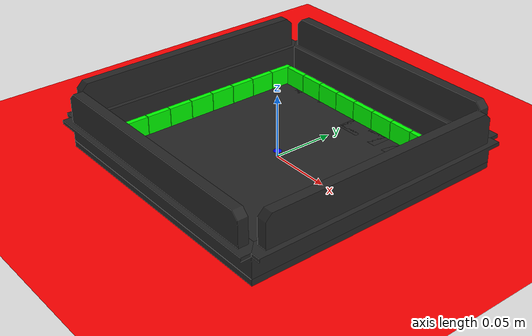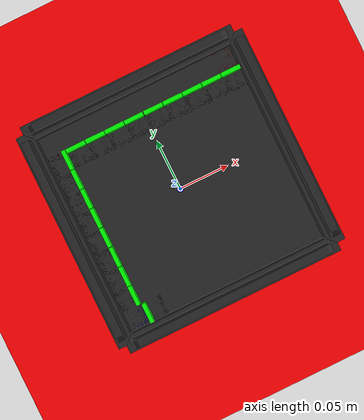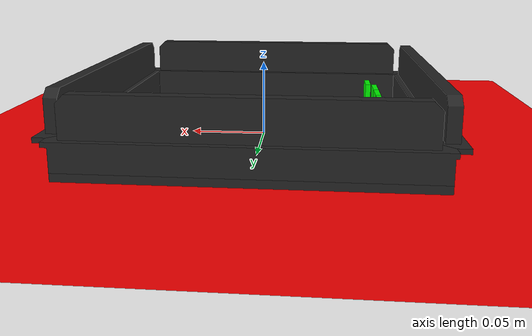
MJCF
<mujoco>
    <compiler meshdir="./" />
    <asset>
    <!-- frame -->
    <mesh name="frame1" file="task_assets/maze_assets_2/compose_rim/compose_rim - Part 2 (1).stl" scale="0.001 0.001 0.001"/>
    <mesh name="frame2" file="task_assets/maze_assets_2/compose_rim/compose_rim - Part 2 (2).stl" scale="0.001 0.001 0.001"/>
    <mesh name="frame3" file="task_assets/maze_assets_2/compose_rim/compose_rim - Part 2 (3).stl" scale="0.001 0.001 0.001"/>
    <mesh name="frame4" file="task_assets/maze_assets_2/compose_rim/compose_rim - Part 2.stl" scale="0.001 0.001 0.001"/>
    <mesh name="frame5" file="task_assets/maze_assets_2/compose_rim/compose_rim - Part 3 (1).stl" scale="0.001 0.001 0.001"/>
    <mesh name="frame6" file="task_assets/maze_assets_2/compose_rim/compose_rim - Part 3 (2).stl" scale="0.001 0.001 0.001"/>
    <mesh name="frame7" file="task_assets/maze_assets_2/compose_rim/compose_rim - Part 3 (3).stl" scale="0.001 0.001 0.001"/>
    <mesh name="frame8" file="task_assets/maze_assets_2/compose_rim/compose_rim - Part 3.stl" scale="0.001 0.001 0.001"/>

    <!-- floorplate-->
    <mesh name="floorplate" file="task_assets/maze_assets_2/floorplate - Part 1.stl" scale="0.001 0.001 0.001"/>

     <!-- floor-->
    <mesh name="floor" file="task_assets/maze_assets_2/baseplate - baseplate_1.stl" scale="0.001 0.001 0.001"/>

    <!-- wallplate-->
    <mesh name="wall_base" file="task_assets/maze_assets_2/wall_plate/wall_plate - Part 1.stl" scale="0.001 0.001 0.001"/>
    <mesh name="real_wall" file="task_assets/maze_assets_2/wall_plate/wall_plate - Part 2.stl" scale="0.001 0.001 0.001"/>

        <material name="black" rgba="0.15 0.15 0.15 1"/>
    </asset>
    <default>
        <default class="visual">
            <geom type="mesh" mass="0" group="2" material="black" contype="0" conaffinity="0"/>
        </default>
        <default class="collision">
            <geom group="3" type="capsule" condim="6" friction="1 5e-3 5e-4" solref=".01 1"/>
        </default>
     </default>

    <visual>
        <headlight diffuse="0.6 0.6 0.6" ambient="0.3 0.3 0.3" specular="0 0 0"/>
        <rgba haze="1 0.25 0.35 1"/>
        <global azimuth="120" elevation="-20"/>
    </visual>

    <asset>
        <texture type="skybox" builtin="gradient" rgb1="0.3 0.5 0.7" rgb2="0 0 0" width="512" height="3072"/>
        <texture type="2d" name="groundplane" builtin="checker" mark="edge" rgb1="0.2 0.3 0.4" rgb2="0.1 0.2 0.3"
          markrgb="0.8 0.8 0.8" width="300" height="300"/>
        <material name="groundplane" texture="groundplane" texuniform="true" texrepeat="5 5" reflectance="0.2"/>
    </asset>

    <worldbody>
        <light pos="0 0 1.5" dir="0 0 -1" directional="true"/>
        <geom name="floor" size="10 10 0.05" type="plane" material="groundplane" rgba="1 0 0 1"/>
        <body name="board" pos="0 0 0">

            <joint name="board_joint" type="free" frictionloss="0.0001"/>

            <!-- IMPORTANT: inertial must exist for free joint body -->
            <inertial pos="0 0 0"
                      mass="0.01"
                      diaginertia="1e-5 1e-5 1e-5"/>

            <!-- visual/collision geometry -->
            <body name="frame">

                <geom type="mesh" mesh="frame1" class="visual"/>
                <geom type="mesh" mesh="frame1" class="collision" friction="0.05 0.05 0.001"/>

                <geom type="mesh" mesh="frame2" class="visual"/>
                <geom type="mesh" mesh="frame2" class="collision" friction="0.05 0.05 0.001"/>

                <geom type="mesh" mesh="frame3" class="visual"/>
                <geom type="mesh" mesh="frame3" class="collision" friction="0.05 0.05 0.001"/>

                <geom type="mesh" mesh="frame4" class="visual"/>
                <geom type="mesh" mesh="frame4" class="collision" friction="0.05 0.05 0.001"/>

                <geom type="mesh" mesh="frame5" class="visual"/>
                <geom type="mesh" mesh="frame5" class="collision" friction="0.05 0.05 0.001"/>

                <geom type="mesh" mesh="frame6" class="visual"/>
                <geom type="mesh" mesh="frame6" class="collision" friction="0.05 0.05 0.001"/>

                <geom type="mesh" mesh="frame7" class="visual"/>
                <geom type="mesh" mesh="frame7" class="collision" friction="0.05 0.05 0.001"/>

                <geom type="mesh" mesh="frame8" class="visual"/>
                <geom type="mesh" mesh="frame8" class="collision" friction="0.05 0.05 0.001"/>

            </body>
            <!-- oben links  = -0.09  0.09 0.003"-->
            <!-- oben rechts = "0.09  0.09 0.003"-->
            <!-- unten rechts = 0.09  -0.09 0.003"-->
            <!-- unten links  = "-0.09  -0.09 0.003"-->
            <body name="marker_goal" pos="0.09  0.09 0.003">
                <geom type="mesh"
                      mesh="floorplate"
                      class="visual"
                      rgba="1 0 0 1"/>
            </body>

            <body name="marker_start" pos=" -0.09  -0.09 0.003 ">
                <geom type="mesh"
                      mesh="floorplate"
                      class="visual"
                      rgba="0 0 1 1"/>
            </body>

            <body name="floor" pos="0 0 0">

                <geom type="mesh" mesh="floor" class="visual"/>
                <geom type="mesh" mesh="floor" class="collision" friction="0.05 0.05 0.001"/>

            </body>
            <!-- wand links euler=" 0 0 0"-->
            <!-- wand rechts euler=" 0 0 180"-->
            <!-- wand oben euler=" 0 0 -90"-->
            <!-- wand unten euler=" 0 0 90"-->
            <body name="wall_1" pos="-0.07 0.07 0.003" euler=" 0 0 -90">

                <geom type="mesh" mesh="wall_base" class="visual"/>
                <geom type="mesh" mesh="real_wall" class="visual" rgba="0 1 0 1"/>
                <geom type="mesh" mesh="real_wall" class="collision" friction="0.05 0.05 0.001"/>

            </body>
            <body name="wall_2" pos="-0.05 0.07 0.003" euler=" 0 0 -90">

                <geom type="mesh" mesh="wall_base" class="visual"/>
                <geom type="mesh" mesh="real_wall" class="visual" rgba="0 1 0 1"/>
                <geom type="mesh" mesh="real_wall" class="collision" friction="0.05 0.05 0.001"/>

            </body>
            <body name="wall_3" pos="-0.03 0.07 0.003" euler=" 0 0 -90">

                <geom type="mesh" mesh="wall_base" class="visual"/>
                <geom type="mesh" mesh="real_wall" class="visual" rgba="0 1 0 1"/>
                <geom type="mesh" mesh="real_wall" class="collision" friction="0.05 0.05 0.001"/>

            </body>
            <body name="wall_4" pos="-0.01 0.07 0.003" euler=" 0 0 -90">

                <geom type="mesh" mesh="wall_base" class="visual"/>
                <geom type="mesh" mesh="real_wall" class="visual" rgba="0 1 0 1"/>
                <geom type="mesh" mesh="real_wall" class="collision" friction="0.05 0.05 0.001"/>

            </body>
            <body name="wall_5" pos="0.01 0.07 0.003" euler=" 0 0 -90">

                <geom type="mesh" mesh="wall_base" class="visual"/>
                <geom type="mesh" mesh="real_wall" class="visual" rgba="0 1 0 1"/>
                <geom type="mesh" mesh="real_wall" class="collision" friction="0.05 0.05 0.001"/>

            </body>
            <body name="wall_6" pos="0.03 0.07 0.003" euler=" 0 0 -90">

                <geom type="mesh" mesh="wall_base" class="visual"/>
                <geom type="mesh" mesh="real_wall" class="visual" rgba="0 1 0 1"/>
                <geom type="mesh" mesh="real_wall" class="collision" friction="0.05 0.05 0.001"/>

            </body>
            <body name="wall_7" pos="0.05 0.07 0.003" euler=" 0 0 -90">

                <geom type="mesh" mesh="wall_base" class="visual"/>
                <geom type="mesh" mesh="real_wall" class="visual" rgba="0 1 0 1"/>
                <geom type="mesh" mesh="real_wall" class="collision" friction="0.05 0.05 0.001"/>

            </body>
            <body name="wall_8" pos="0.07 0.07 0.003" euler=" 0 0 -90">

                <geom type="mesh" mesh="wall_base" class="visual"/>
                <geom type="mesh" mesh="real_wall" class="visual" rgba="0 1 0 1"/>
                <geom type="mesh" mesh="real_wall" class="collision" friction="0.05 0.05 0.001"/>

            </body>
            <body name="wall_9" pos="0.09 0.07 0.003" euler=" 0 0 -90">

                <geom type="mesh" mesh="wall_base" class="visual"/>
                <geom type="mesh" mesh="real_wall" class="visual" rgba="0 1 0 1"/>
                <geom type="mesh" mesh="real_wall" class="collision" friction="0.05 0.05 0.001"/>

            </body>

            <body name="wall_10" pos="-0.09 -0.07 0.003" euler=" 0 0 180">

                <geom type="mesh" mesh="wall_base" class="visual"/>
                <geom type="mesh" mesh="real_wall" class="visual" rgba="0 1 0 1"/>
                <geom type="mesh" mesh="real_wall" class="collision" friction="0.05 0.05 0.001"/>

            </body>

            <body name="wall_11" pos="-0.09 -0.05 0.003" euler=" 0 0 -180">

                <geom type="mesh" mesh="wall_base" class="visual"/>
                <geom type="mesh" mesh="real_wall" class="visual" rgba="0 1 0 1"/>
                <geom type="mesh" mesh="real_wall" class="collision" friction="0.05 0.05 0.001"/>

            </body>

            <body name="wall_12" pos="-0.09 -0.03 0.003" euler=" 0 0 -180">

                <geom type="mesh" mesh="wall_base" class="visual"/>
                <geom type="mesh" mesh="real_wall" class="visual" rgba="0 1 0 1"/>
                <geom type="mesh" mesh="real_wall" class="collision" friction="0.05 0.05 0.001"/>

            </body>

            <body name="wall_13" pos="-0.09 -0.01 0.003" euler=" 0 0 180">

                <geom type="mesh" mesh="wall_base" class="visual"/>
                <geom type="mesh" mesh="real_wall" class="visual" rgba="0 1 0 1"/>
                <geom type="mesh" mesh="real_wall" class="collision" friction="0.05 0.05 0.001"/>

            </body>

            <body name="wall_14" pos="-0.09 0.01 0.003" euler=" 0 0 180">

                <geom type="mesh" mesh="wall_base" class="visual"/>
                <geom type="mesh" mesh="real_wall" class="visual" rgba="0 1 0 1"/>
                <geom type="mesh" mesh="real_wall" class="collision" friction="0.05 0.05 0.001"/>

            </body>

            <body name="wall_15" pos="-0.09 0.03 0.003" euler=" 0 0 180">

                <geom type="mesh" mesh="wall_base" class="visual"/>
                <geom type="mesh" mesh="real_wall" class="visual" rgba="0 1 0 1"/>
                <geom type="mesh" mesh="real_wall" class="collision" friction="0.05 0.05 0.001"/>

            </body>

            <body name="wall_16" pos="-0.09 0.05 0.003" euler=" 0 0 -180">

                <geom type="mesh" mesh="wall_base" class="visual"/>
                <geom type="mesh" mesh="real_wall" class="visual" rgba="0 1 0 1"/>
                <geom type="mesh" mesh="real_wall" class="collision" friction="0.05 0.05 0.001"/>

            </body>

            <body name="wall_17" pos="-0.09 0.07 0.003" euler=" 0 0 -180">

                <geom type="mesh" mesh="wall_base" class="visual"/>
                <geom type="mesh" mesh="real_wall" class="visual" rgba="0 1 0 1"/>
                <geom type="mesh" mesh="real_wall" class="collision" friction="0.05 0.05 0.001"/>

            </body>

            <body name="wall_18" pos="-0.07 -0.09 0.003" euler=" 0 0 0">

                <geom type="mesh" mesh="wall_base" class="visual"/>
                <geom type="mesh" mesh="real_wall" class="visual" rgba="0 1 0 1"/>
                <geom type="mesh" mesh="real_wall" class="collision" friction="0.05 0.05 0.001"/>

            </body>

        </body>

        <body name="ball" pos="0 0 0">
            <joint name="ball_joint" type="free" frictionloss="0.01" />
            <inertial pos="0.02 0.02 0.09" mass="0.005" diaginertia="0.002 0.002 0.002" />
            <geom condim="4" solimp="2 1 0.01" solref="0.01 1" friction="0.002 0.0001 0.0001" pos=" 0 0 0" size="0.006" type="sphere" name="blue_ball" rgba="0 0 1 1" />
        </body>

    </worldbody>

   <keyframe>
        <key name="init"
             qpos="0 0 0.01   1 0 0 0  0.09  0.09 0.08 1 0 0 0 "/>
    </keyframe>

</mujoco>
